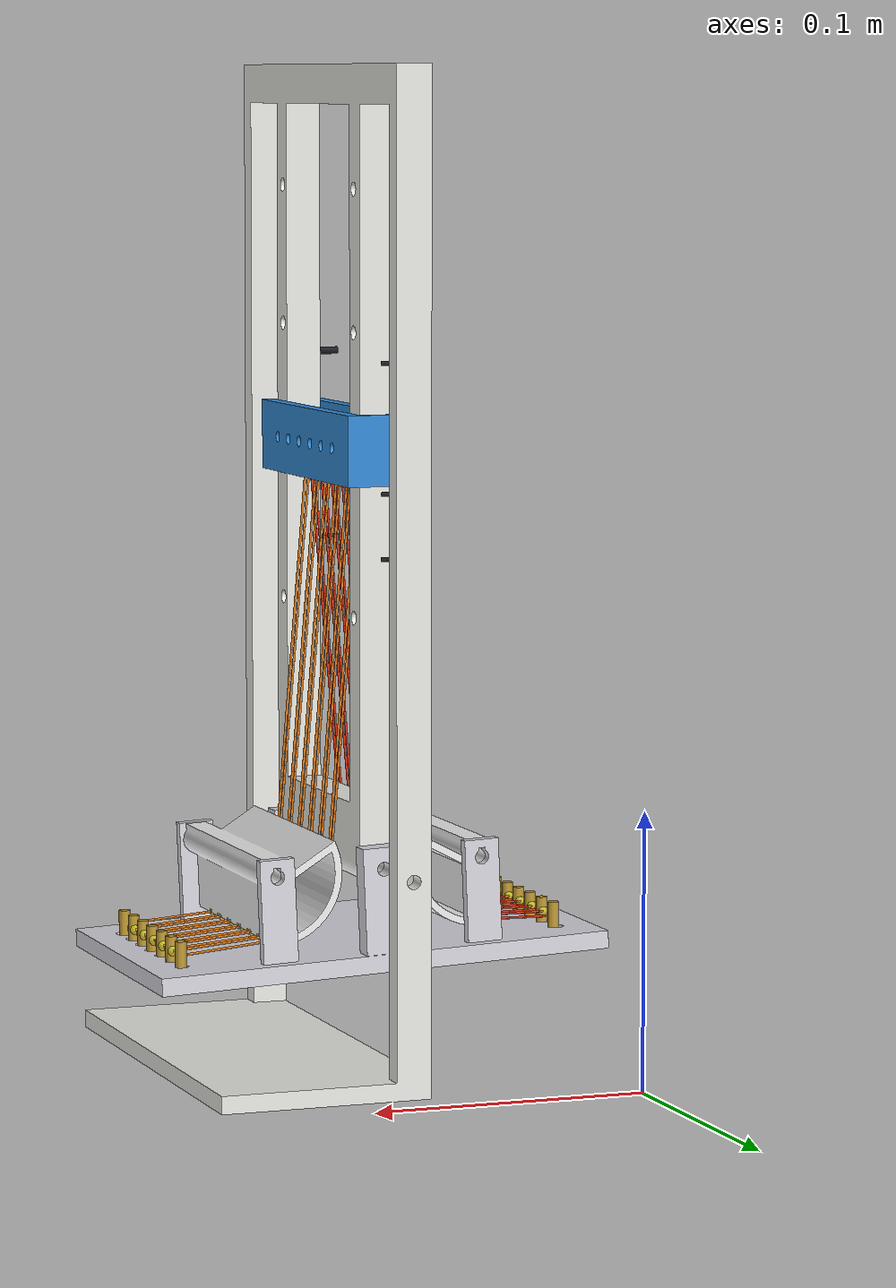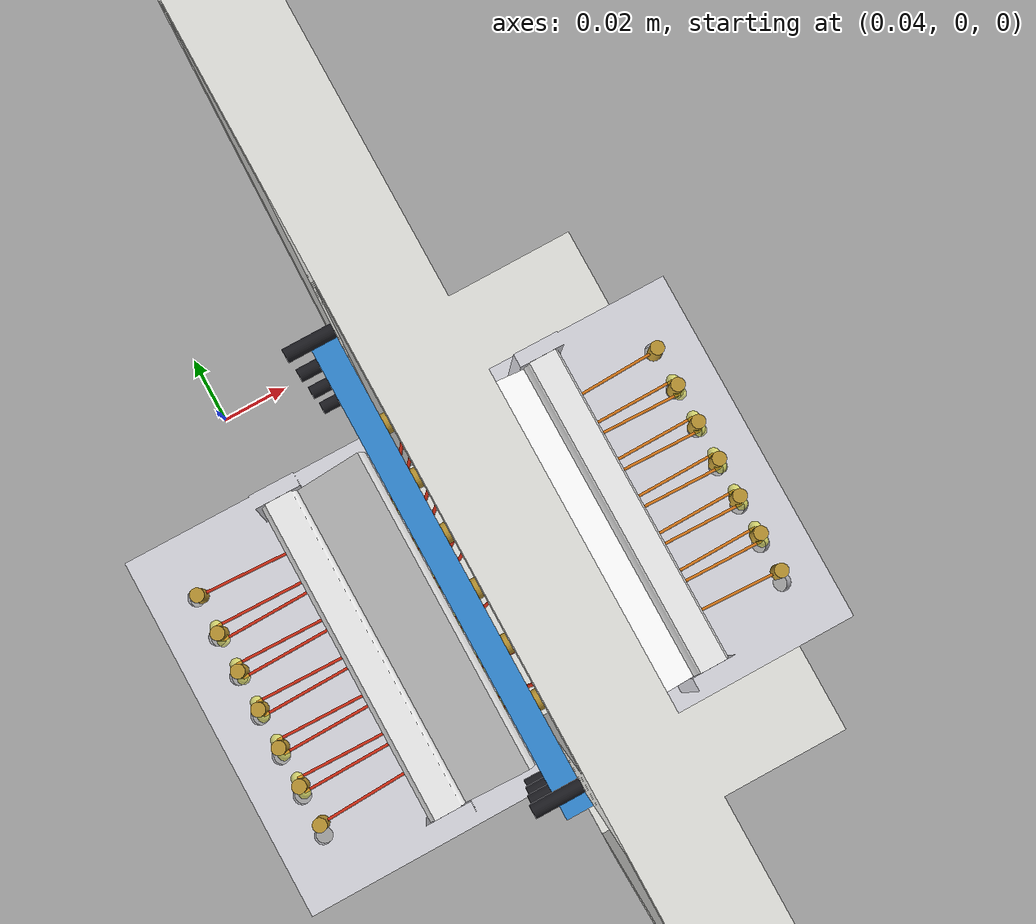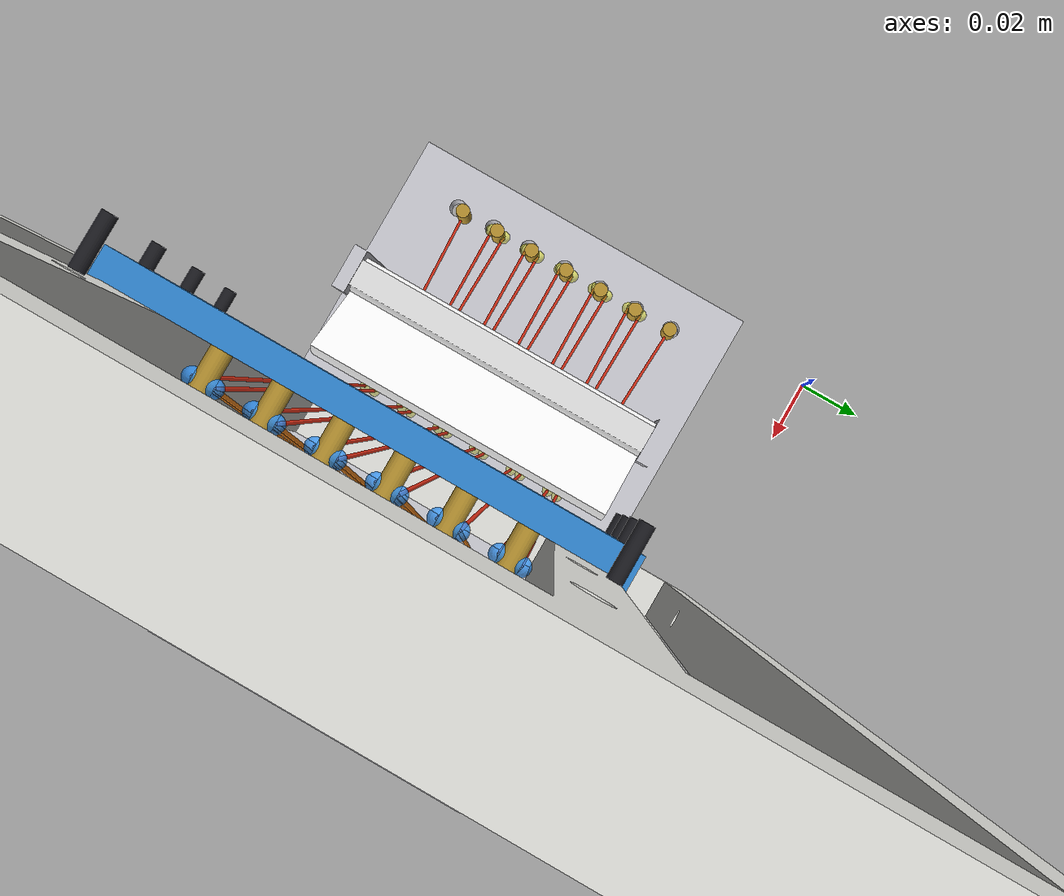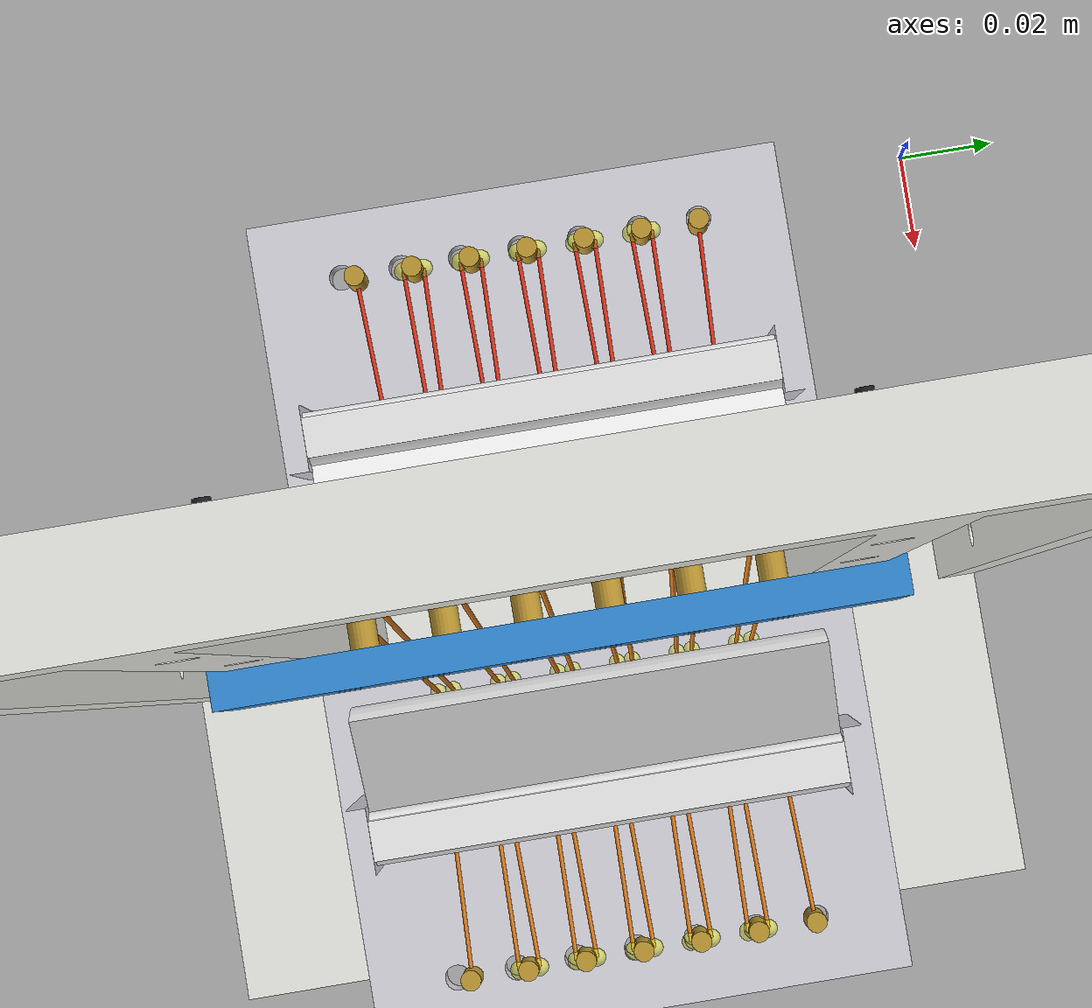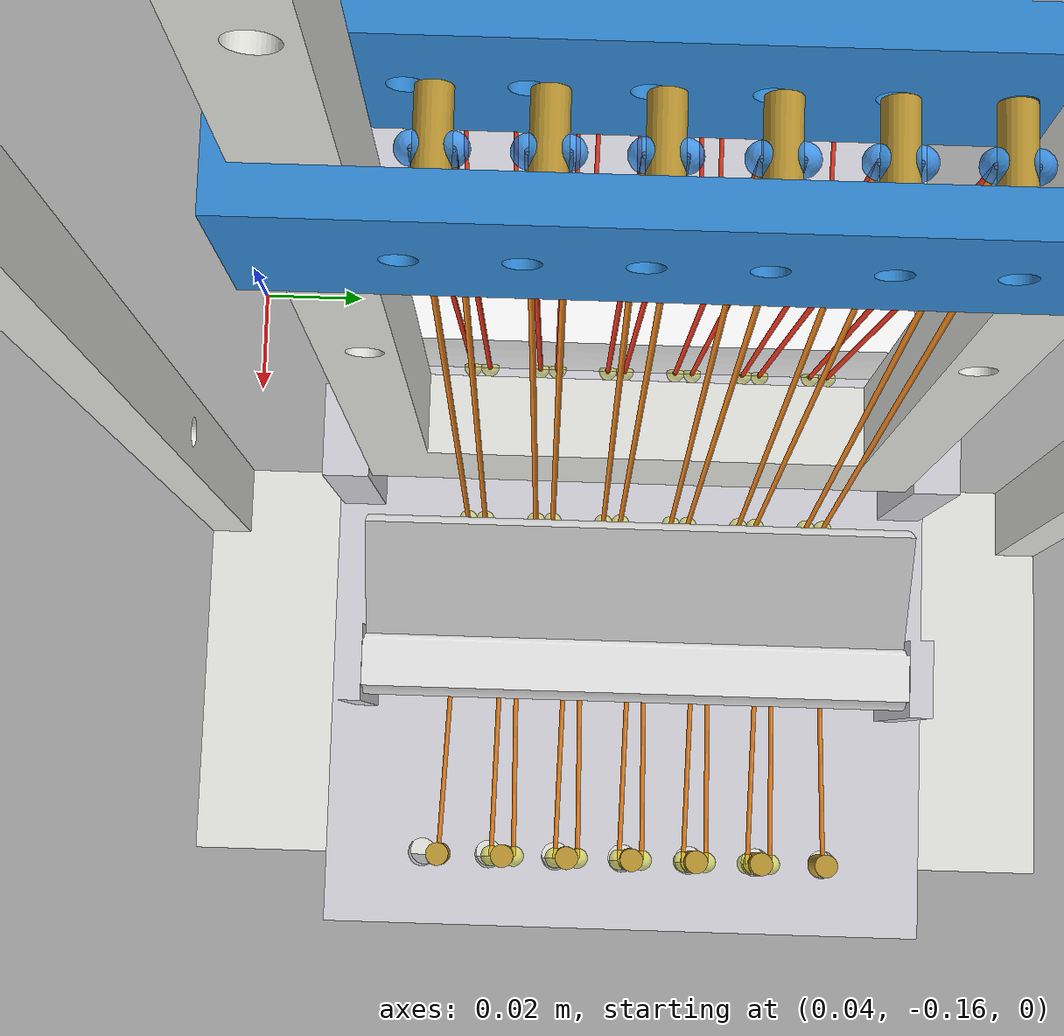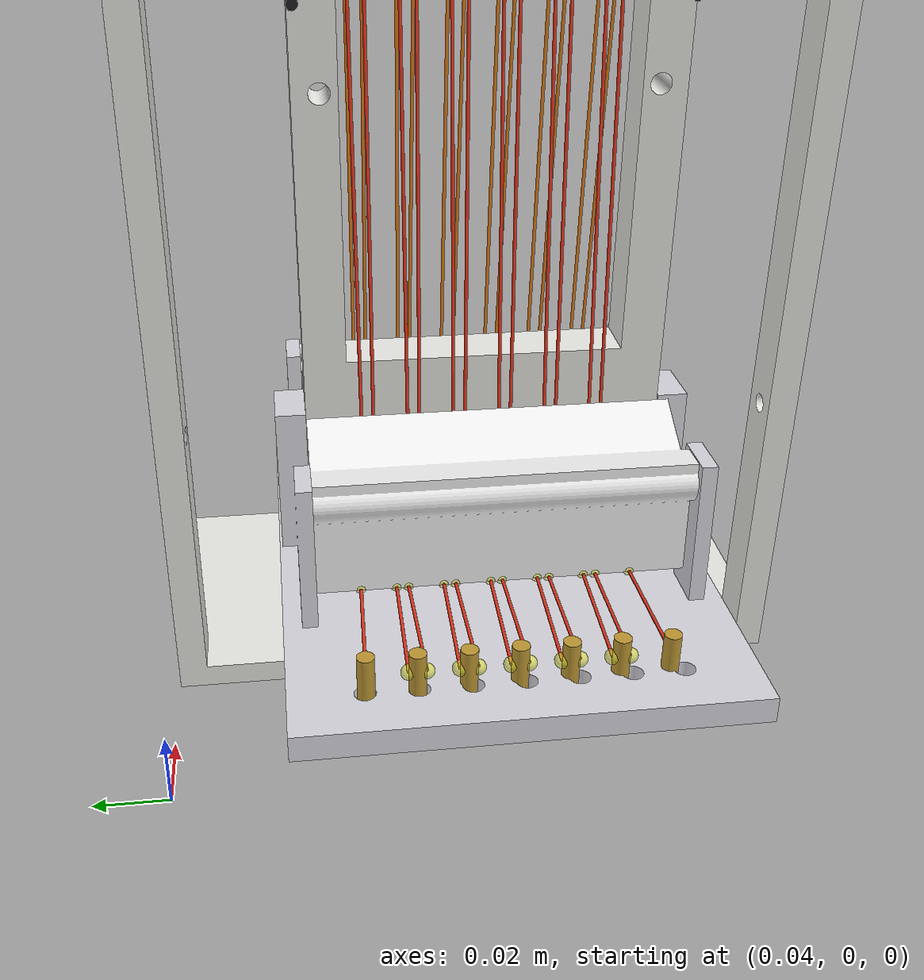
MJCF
<mujoco model="v2_wire_rig">
  <compiler meshdir="meshes" angle="radian" inertiafromgeom="true" autolimits="true"/>
  <option timestep="0.001" gravity="0 0 -9.81" integrator="RK4"/>
  <visual><global offwidth="1280" offheight="960"/></visual>

  <asset>
    <mesh name="inital_test_rod_3" file="inital_test_rod_3.stl"/>
    <mesh name="height_adjust_1" file="height_adjust_1.stl"/>
    <mesh name="inital_test_base_platev2_1" file="inital_test_base_platev2_1.stl"/>
    <mesh name="initial_test_dot2inpinv2_1" file="initial_test_dot2inpinv2_1.stl"/>
    <mesh name="keypinv2_1" file="keypinv2_1.stl"/>
    <mesh name="keypinv2_2" file="keypinv2_2.stl"/>
    <mesh name="radiusv2_1" file="radiusv2_1.stl"/>
    <mesh name="radiusv2_2" file="radiusv2_2.stl"/>
  </asset>

  <worldbody>
    <light pos="0.1 0.6 0.5" dir="-0.1 -0.7 -0.6" diffuse="0.9 0.9 0.9"/>
    <light pos="-0.2 0.4 -0.3" dir="0.3 -0.5 0.5" diffuse="0.4 0.4 0.4"/>

    <body name="frame">
      <geom type="mesh" mesh="inital_test_rod_3" rgba="0.92 0.92 0.90 1" density="1240" contype="0" conaffinity="0"/>
      <geom type="mesh" mesh="height_adjust_1" pos="0 0 0.00000" rgba="0.20 0.55 0.85 1" density="1240" contype="0" conaffinity="0"/>
    </body>
    <geom type="cylinder" fromto="0.07925 -0.05397 0.22606  0.09195 -0.05397 0.22606" size="0.00201" rgba="0.75 0.6 0.2 1" contype="0" conaffinity="0"/>
    <geom type="cylinder" fromto="0.07925 -0.06541 0.22606  0.09195 -0.06541 0.22606" size="0.00201" rgba="0.75 0.6 0.2 1" contype="0" conaffinity="0"/>
    <geom type="cylinder" fromto="0.07925 -0.07684 0.22606  0.09195 -0.07684 0.22606" size="0.00201" rgba="0.75 0.6 0.2 1" contype="0" conaffinity="0"/>
    <geom type="cylinder" fromto="0.07925 -0.08826 0.22606  0.09195 -0.08826 0.22606" size="0.00201" rgba="0.75 0.6 0.2 1" contype="0" conaffinity="0"/>
    <geom type="cylinder" fromto="0.07925 -0.09969 0.22606  0.09195 -0.09969 0.22606" size="0.00201" rgba="0.75 0.6 0.2 1" contype="0" conaffinity="0"/>
    <geom type="cylinder" fromto="0.07925 -0.11113 0.22606  0.09195 -0.11113 0.22606" size="0.00201" rgba="0.75 0.6 0.2 1" contype="0" conaffinity="0"/>
    <geom type="cylinder" fromto="0.0700 -0.04000 0.18796  0.0840 -0.04000 0.18796" size="0.00130" rgba="0.12 0.12 0.14 1" contype="0" conaffinity="0"/>
    <geom type="cylinder" fromto="0.0700 -0.12600 0.18796  0.0840 -0.12600 0.18796" size="0.00130" rgba="0.12 0.12 0.14 1" contype="0" conaffinity="0"/>
    <geom type="cylinder" fromto="0.0700 -0.04000 0.21082  0.0840 -0.04000 0.21082" size="0.00130" rgba="0.12 0.12 0.14 1" contype="0" conaffinity="0"/>
    <geom type="cylinder" fromto="0.0700 -0.12600 0.21082  0.0840 -0.12600 0.21082" size="0.00130" rgba="0.12 0.12 0.14 1" contype="0" conaffinity="0"/>
    <geom type="cylinder" fromto="0.0700 -0.04000 0.23368  0.0840 -0.04000 0.23368" size="0.00130" rgba="0.12 0.12 0.14 1" contype="0" conaffinity="0"/>
    <geom type="cylinder" fromto="0.0700 -0.12600 0.23368  0.0840 -0.12600 0.23368" size="0.00130" rgba="0.12 0.12 0.14 1" contype="0" conaffinity="0"/>
    <geom type="cylinder" fromto="0.0700 -0.04000 0.25654  0.0840 -0.04000 0.25654" size="0.00130" rgba="0.12 0.12 0.14 1" contype="0" conaffinity="0"/>
    <geom type="cylinder" fromto="0.0700 -0.12600 0.25654  0.0840 -0.12600 0.25654" size="0.00130" rgba="0.12 0.12 0.14 1" contype="0" conaffinity="0"/>
    <site name="toe_t1i" pos="0.08560 -0.05197 0.22606" size="0.0018" rgba="0.2 0.6 1 0.8"/>
    <site name="toe_t1o" pos="0.08560 -0.05598 0.22606" size="0.0018" rgba="0.2 0.6 1 0.8"/>
    <site name="toe_t3i" pos="0.08560 -0.06340 0.22606" size="0.0018" rgba="0.2 0.6 1 0.8"/>
    <site name="toe_t3o" pos="0.08560 -0.06741 0.22606" size="0.0018" rgba="0.2 0.6 1 0.8"/>
    <site name="toe_t5i" pos="0.08560 -0.07483 0.22606" size="0.0018" rgba="0.2 0.6 1 0.8"/>
    <site name="toe_t5o" pos="0.08560 -0.07884 0.22606" size="0.0018" rgba="0.2 0.6 1 0.8"/>
    <site name="toe_t7i" pos="0.08560 -0.08626 0.22606" size="0.0018" rgba="0.2 0.6 1 0.8"/>
    <site name="toe_t7o" pos="0.08560 -0.09027 0.22606" size="0.0018" rgba="0.2 0.6 1 0.8"/>
    <site name="toe_t9i" pos="0.08560 -0.09769 0.22606" size="0.0018" rgba="0.2 0.6 1 0.8"/>
    <site name="toe_t9o" pos="0.08560 -0.10170 0.22606" size="0.0018" rgba="0.2 0.6 1 0.8"/>
    <site name="toe_t11i" pos="0.08560 -0.10912 0.22606" size="0.0018" rgba="0.2 0.6 1 0.8"/>
    <site name="toe_t11o" pos="0.08560 -0.11313 0.22606" size="0.0018" rgba="0.2 0.6 1 0.8"/>
    <site name="heel_t1i" pos="0.08560 -0.05197 0.22606" size="0.0018" rgba="0.2 0.6 1 0.8"/>
    <site name="heel_t1o" pos="0.08560 -0.05598 0.22606" size="0.0018" rgba="0.2 0.6 1 0.8"/>
    <site name="heel_t3i" pos="0.08560 -0.06340 0.22606" size="0.0018" rgba="0.2 0.6 1 0.8"/>
    <site name="heel_t3o" pos="0.08560 -0.06741 0.22606" size="0.0018" rgba="0.2 0.6 1 0.8"/>
    <site name="heel_t5i" pos="0.08560 -0.07483 0.22606" size="0.0018" rgba="0.2 0.6 1 0.8"/>
    <site name="heel_t5o" pos="0.08560 -0.07884 0.22606" size="0.0018" rgba="0.2 0.6 1 0.8"/>
    <site name="heel_t7i" pos="0.08560 -0.08626 0.22606" size="0.0018" rgba="0.2 0.6 1 0.8"/>
    <site name="heel_t7o" pos="0.08560 -0.09027 0.22606" size="0.0018" rgba="0.2 0.6 1 0.8"/>
    <site name="heel_t9i" pos="0.08560 -0.09769 0.22606" size="0.0018" rgba="0.2 0.6 1 0.8"/>
    <site name="heel_t9o" pos="0.08560 -0.10170 0.22606" size="0.0018" rgba="0.2 0.6 1 0.8"/>
    <site name="heel_t11i" pos="0.08560 -0.10912 0.22606" size="0.0018" rgba="0.2 0.6 1 0.8"/>
    <site name="heel_t11o" pos="0.08560 -0.11313 0.22606" size="0.0018" rgba="0.2 0.6 1 0.8"/>

    <body name="foot" pos="0.08560 -0.08382 0.07976">
      <joint name="ankle" type="hinge" axis="0 -1 0" range="-0.8 0.8"
             damping="0.002"/>
      <geom type="mesh" mesh="inital_test_base_platev2_1" rgba="0.85 0.85 0.88 1" density="1240" contype="0" conaffinity="0"/>
      <geom type="mesh" mesh="initial_test_dot2inpinv2_1" rgba="0.20 0.20 0.20 1" density="1240" contype="0" conaffinity="0"/>
      <geom type="mesh" mesh="keypinv2_1" rgba="0.15 0.15 0.15 1" density="1240" contype="0" conaffinity="0"/>
      <geom type="mesh" mesh="keypinv2_2" rgba="0.15 0.15 0.15 1" density="1240" contype="0" conaffinity="0"/>
      <geom type="mesh" mesh="radiusv2_1" rgba="0.95 0.95 0.95 1" density="1240" contype="0" conaffinity="0"/>
      <geom type="mesh" mesh="radiusv2_2" rgba="0.95 0.95 0.95 1" density="1240" contype="0" conaffinity="0"/>
      <geom type="cylinder" fromto="-0.07036 0.03556 -0.03087  -0.07036 0.03556 -0.01817" size="0.00201" rgba="0.75 0.6 0.2 1" contype="0" conaffinity="0"/>
      <geom type="cylinder" fromto="-0.07036 0.02413 -0.03087  -0.07036 0.02413 -0.01817" size="0.00201" rgba="0.75 0.6 0.2 1" contype="0" conaffinity="0"/>
      <geom type="cylinder" fromto="-0.07036 0.01270 -0.03087  -0.07036 0.01270 -0.01817" size="0.00201" rgba="0.75 0.6 0.2 1" contype="0" conaffinity="0"/>
      <geom type="cylinder" fromto="-0.07036 0.00127 -0.03087  -0.07036 0.00127 -0.01817" size="0.00201" rgba="0.75 0.6 0.2 1" contype="0" conaffinity="0"/>
      <geom type="cylinder" fromto="-0.07036 -0.01016 -0.03087  -0.07036 -0.01016 -0.01817" size="0.00201" rgba="0.75 0.6 0.2 1" contype="0" conaffinity="0"/>
      <geom type="cylinder" fromto="-0.07036 -0.02159 -0.03087  -0.07036 -0.02159 -0.01817" size="0.00201" rgba="0.75 0.6 0.2 1" contype="0" conaffinity="0"/>
      <geom type="cylinder" fromto="-0.07036 -0.03302 -0.03087  -0.07036 -0.03302 -0.01817" size="0.00201" rgba="0.75 0.6 0.2 1" contype="0" conaffinity="0"/>
      <geom type="cylinder" fromto="0.06934 0.03556 -0.03683  0.06934 0.03556 -0.02413" size="0.00201" rgba="0.75 0.6 0.2 1" contype="0" conaffinity="0"/>
      <geom type="cylinder" fromto="0.06934 0.02413 -0.03683  0.06934 0.02413 -0.02413" size="0.00201" rgba="0.75 0.6 0.2 1" contype="0" conaffinity="0"/>
      <geom type="cylinder" fromto="0.06934 0.01270 -0.03683  0.06934 0.01270 -0.02413" size="0.00201" rgba="0.75 0.6 0.2 1" contype="0" conaffinity="0"/>
      <geom type="cylinder" fromto="0.06934 0.00127 -0.03683  0.06934 0.00127 -0.02413" size="0.00201" rgba="0.75 0.6 0.2 1" contype="0" conaffinity="0"/>
      <geom type="cylinder" fromto="0.06934 -0.01016 -0.03683  0.06934 -0.01016 -0.02413" size="0.00201" rgba="0.75 0.6 0.2 1" contype="0" conaffinity="0"/>
      <geom type="cylinder" fromto="0.06934 -0.02159 -0.03683  0.06934 -0.02159 -0.02413" size="0.00201" rgba="0.75 0.6 0.2 1" contype="0" conaffinity="0"/>
      <geom type="cylinder" fromto="0.06934 -0.03302 -0.03683  0.06934 -0.03302 -0.02413" size="0.00201" rgba="0.75 0.6 0.2 1" contype="0" conaffinity="0"/>
      <site name="toe_t0" pos="-0.07036 0.03556 -0.02325" size="0.0018" rgba="0.9 0.9 0.2 0.6"/>
      <site name="toe_t2i" pos="-0.07036 0.02614 -0.02325" size="0.0018" rgba="0.9 0.9 0.2 0.6"/>
      <site name="toe_t2o" pos="-0.07036 0.02212 -0.02325" size="0.0018" rgba="0.9 0.9 0.2 0.6"/>
      <site name="toe_t4i" pos="-0.07036 0.01471 -0.02325" size="0.0018" rgba="0.9 0.9 0.2 0.6"/>
      <site name="toe_t4o" pos="-0.07036 0.01069 -0.02325" size="0.0018" rgba="0.9 0.9 0.2 0.6"/>
      <site name="toe_t6i" pos="-0.07036 0.00328 -0.02325" size="0.0018" rgba="0.9 0.9 0.2 0.6"/>
      <site name="toe_t6o" pos="-0.07036 -0.00074 -0.02325" size="0.0018" rgba="0.9 0.9 0.2 0.6"/>
      <site name="toe_t8i" pos="-0.07036 -0.00815 -0.02325" size="0.0018" rgba="0.9 0.9 0.2 0.6"/>
      <site name="toe_t8o" pos="-0.07036 -0.01217 -0.02325" size="0.0018" rgba="0.9 0.9 0.2 0.6"/>
      <site name="toe_t10i" pos="-0.07036 -0.01958 -0.02325" size="0.0018" rgba="0.9 0.9 0.2 0.6"/>
      <site name="toe_t10o" pos="-0.07036 -0.02360 -0.02325" size="0.0018" rgba="0.9 0.9 0.2 0.6"/>
      <site name="toe_t12" pos="-0.07036 -0.03302 -0.02325" size="0.0018" rgba="0.9 0.9 0.2 0.6"/>
      <site name="toe_s0a0" pos="-0.03809 0.03413 -0.02324" size="0.0015" rgba="0.9 0.9 0.2 0.5"/>
      <site name="toe_s0a1" pos="-0.02094 0.03270 -0.01656" size="0.0015" rgba="0.9 0.9 0.2 0.5"/>
      <site name="toe_s0a2" pos="-0.01280 0.03127 -0.00005" size="0.0015" rgba="0.9 0.9 0.2 0.5"/>
      <site name="toe_s1a0" pos="-0.01280 0.02842 -0.00005" size="0.0015" rgba="0.9 0.9 0.2 0.5"/>
      <site name="toe_s1a1" pos="-0.02094 0.02699 -0.01656" size="0.0015" rgba="0.9 0.9 0.2 0.5"/>
      <site name="toe_s1a2" pos="-0.03809 0.02556 -0.02324" size="0.0015" rgba="0.9 0.9 0.2 0.5"/>
      <site name="toe_s2a0" pos="-0.03809 0.02270 -0.02324" size="0.0015" rgba="0.9 0.9 0.2 0.5"/>
      <site name="toe_s2a1" pos="-0.02094 0.02127 -0.01656" size="0.0015" rgba="0.9 0.9 0.2 0.5"/>
      <site name="toe_s2a2" pos="-0.01280 0.01984 -0.00005" size="0.0015" rgba="0.9 0.9 0.2 0.5"/>
      <site name="toe_s3a0" pos="-0.01280 0.01699 -0.00005" size="0.0015" rgba="0.9 0.9 0.2 0.5"/>
      <site name="toe_s3a1" pos="-0.02094 0.01556 -0.01656" size="0.0015" rgba="0.9 0.9 0.2 0.5"/>
      <site name="toe_s3a2" pos="-0.03809 0.01413 -0.02324" size="0.0015" rgba="0.9 0.9 0.2 0.5"/>
      <site name="toe_s4a0" pos="-0.03809 0.01127 -0.02324" size="0.0015" rgba="0.9 0.9 0.2 0.5"/>
      <site name="toe_s4a1" pos="-0.02094 0.00984 -0.01656" size="0.0015" rgba="0.9 0.9 0.2 0.5"/>
      <site name="toe_s4a2" pos="-0.01280 0.00841 -0.00005" size="0.0015" rgba="0.9 0.9 0.2 0.5"/>
      <site name="toe_s5a0" pos="-0.01280 0.00556 -0.00005" size="0.0015" rgba="0.9 0.9 0.2 0.5"/>
      <site name="toe_s5a1" pos="-0.02094 0.00413 -0.01656" size="0.0015" rgba="0.9 0.9 0.2 0.5"/>
      <site name="toe_s5a2" pos="-0.03809 0.00270 -0.02324" size="0.0015" rgba="0.9 0.9 0.2 0.5"/>
      <site name="toe_s6a0" pos="-0.03809 -0.00016 -0.02324" size="0.0015" rgba="0.9 0.9 0.2 0.5"/>
      <site name="toe_s6a1" pos="-0.02094 -0.00159 -0.01656" size="0.0015" rgba="0.9 0.9 0.2 0.5"/>
      <site name="toe_s6a2" pos="-0.01280 -0.00302 -0.00005" size="0.0015" rgba="0.9 0.9 0.2 0.5"/>
      <site name="toe_s7a0" pos="-0.01280 -0.00587 -0.00005" size="0.0015" rgba="0.9 0.9 0.2 0.5"/>
      <site name="toe_s7a1" pos="-0.02094 -0.00730 -0.01656" size="0.0015" rgba="0.9 0.9 0.2 0.5"/>
      <site name="toe_s7a2" pos="-0.03809 -0.00873 -0.02324" size="0.0015" rgba="0.9 0.9 0.2 0.5"/>
      <site name="toe_s8a0" pos="-0.03809 -0.01159 -0.02324" size="0.0015" rgba="0.9 0.9 0.2 0.5"/>
      <site name="toe_s8a1" pos="-0.02094 -0.01302 -0.01656" size="0.0015" rgba="0.9 0.9 0.2 0.5"/>
      <site name="toe_s8a2" pos="-0.01280 -0.01445 -0.00005" size="0.0015" rgba="0.9 0.9 0.2 0.5"/>
      <site name="toe_s9a0" pos="-0.01280 -0.01730 -0.00005" size="0.0015" rgba="0.9 0.9 0.2 0.5"/>
      <site name="toe_s9a1" pos="-0.02094 -0.01873 -0.01656" size="0.0015" rgba="0.9 0.9 0.2 0.5"/>
      <site name="toe_s9a2" pos="-0.03809 -0.02016 -0.02324" size="0.0015" rgba="0.9 0.9 0.2 0.5"/>
      <site name="toe_s10a0" pos="-0.03809 -0.02302 -0.02324" size="0.0015" rgba="0.9 0.9 0.2 0.5"/>
      <site name="toe_s10a1" pos="-0.02094 -0.02445 -0.01656" size="0.0015" rgba="0.9 0.9 0.2 0.5"/>
      <site name="toe_s10a2" pos="-0.01280 -0.02588 -0.00005" size="0.0015" rgba="0.9 0.9 0.2 0.5"/>
      <site name="toe_s11a0" pos="-0.01280 -0.02873 -0.00005" size="0.0015" rgba="0.9 0.9 0.2 0.5"/>
      <site name="toe_s11a1" pos="-0.02094 -0.03016 -0.01656" size="0.0015" rgba="0.9 0.9 0.2 0.5"/>
      <site name="toe_s11a2" pos="-0.03809 -0.03159 -0.02324" size="0.0015" rgba="0.9 0.9 0.2 0.5"/>
      <site name="heel_t0" pos="0.06934 0.03556 -0.02921" size="0.0018" rgba="0.9 0.9 0.2 0.6"/>
      <site name="heel_t2i" pos="0.06934 0.02614 -0.02921" size="0.0018" rgba="0.9 0.9 0.2 0.6"/>
      <site name="heel_t2o" pos="0.06934 0.02212 -0.02921" size="0.0018" rgba="0.9 0.9 0.2 0.6"/>
      <site name="heel_t4i" pos="0.06934 0.01471 -0.02921" size="0.0018" rgba="0.9 0.9 0.2 0.6"/>
      <site name="heel_t4o" pos="0.06934 0.01069 -0.02921" size="0.0018" rgba="0.9 0.9 0.2 0.6"/>
      <site name="heel_t6i" pos="0.06934 0.00328 -0.02921" size="0.0018" rgba="0.9 0.9 0.2 0.6"/>
      <site name="heel_t6o" pos="0.06934 -0.00074 -0.02921" size="0.0018" rgba="0.9 0.9 0.2 0.6"/>
      <site name="heel_t8i" pos="0.06934 -0.00815 -0.02921" size="0.0018" rgba="0.9 0.9 0.2 0.6"/>
      <site name="heel_t8o" pos="0.06934 -0.01217 -0.02921" size="0.0018" rgba="0.9 0.9 0.2 0.6"/>
      <site name="heel_t10i" pos="0.06934 -0.01958 -0.02921" size="0.0018" rgba="0.9 0.9 0.2 0.6"/>
      <site name="heel_t10o" pos="0.06934 -0.02360 -0.02921" size="0.0018" rgba="0.9 0.9 0.2 0.6"/>
      <site name="heel_t12" pos="0.06934 -0.03302 -0.02921" size="0.0018" rgba="0.9 0.9 0.2 0.6"/>
      <site name="heel_s0a0" pos="0.03591 0.03413 -0.02632" size="0.0015" rgba="0.9 0.9 0.2 0.5"/>
      <site name="heel_s0a1" pos="0.02013 0.03270 -0.01897" size="0.0015" rgba="0.9 0.9 0.2 0.5"/>
      <site name="heel_s0a2" pos="0.01279 0.03127 -0.00318" size="0.0015" rgba="0.9 0.9 0.2 0.5"/>
      <site name="heel_s1a0" pos="0.01279 0.02842 -0.00318" size="0.0015" rgba="0.9 0.9 0.2 0.5"/>
      <site name="heel_s1a1" pos="0.02013 0.02699 -0.01897" size="0.0015" rgba="0.9 0.9 0.2 0.5"/>
      <site name="heel_s1a2" pos="0.03591 0.02556 -0.02632" size="0.0015" rgba="0.9 0.9 0.2 0.5"/>
      <site name="heel_s2a0" pos="0.03591 0.02270 -0.02632" size="0.0015" rgba="0.9 0.9 0.2 0.5"/>
      <site name="heel_s2a1" pos="0.02013 0.02127 -0.01897" size="0.0015" rgba="0.9 0.9 0.2 0.5"/>
      <site name="heel_s2a2" pos="0.01279 0.01984 -0.00318" size="0.0015" rgba="0.9 0.9 0.2 0.5"/>
      <site name="heel_s3a0" pos="0.01279 0.01699 -0.00318" size="0.0015" rgba="0.9 0.9 0.2 0.5"/>
      <site name="heel_s3a1" pos="0.02013 0.01556 -0.01897" size="0.0015" rgba="0.9 0.9 0.2 0.5"/>
      <site name="heel_s3a2" pos="0.03591 0.01413 -0.02632" size="0.0015" rgba="0.9 0.9 0.2 0.5"/>
      <site name="heel_s4a0" pos="0.03591 0.01127 -0.02632" size="0.0015" rgba="0.9 0.9 0.2 0.5"/>
      <site name="heel_s4a1" pos="0.02013 0.00984 -0.01897" size="0.0015" rgba="0.9 0.9 0.2 0.5"/>
      <site name="heel_s4a2" pos="0.01279 0.00841 -0.00318" size="0.0015" rgba="0.9 0.9 0.2 0.5"/>
      <site name="heel_s5a0" pos="0.01279 0.00556 -0.00318" size="0.0015" rgba="0.9 0.9 0.2 0.5"/>
      <site name="heel_s5a1" pos="0.02013 0.00413 -0.01897" size="0.0015" rgba="0.9 0.9 0.2 0.5"/>
      <site name="heel_s5a2" pos="0.03591 0.00270 -0.02632" size="0.0015" rgba="0.9 0.9 0.2 0.5"/>
      <site name="heel_s6a0" pos="0.03591 -0.00016 -0.02632" size="0.0015" rgba="0.9 0.9 0.2 0.5"/>
      <site name="heel_s6a1" pos="0.02013 -0.00159 -0.01897" size="0.0015" rgba="0.9 0.9 0.2 0.5"/>
      <site name="heel_s6a2" pos="0.01279 -0.00302 -0.00318" size="0.0015" rgba="0.9 0.9 0.2 0.5"/>
      <site name="heel_s7a0" pos="0.01279 -0.00587 -0.00318" size="0.0015" rgba="0.9 0.9 0.2 0.5"/>
      <site name="heel_s7a1" pos="0.02013 -0.00730 -0.01897" size="0.0015" rgba="0.9 0.9 0.2 0.5"/>
      <site name="heel_s7a2" pos="0.03591 -0.00873 -0.02632" size="0.0015" rgba="0.9 0.9 0.2 0.5"/>
      <site name="heel_s8a0" pos="0.03591 -0.01159 -0.02632" size="0.0015" rgba="0.9 0.9 0.2 0.5"/>
      <site name="heel_s8a1" pos="0.02013 -0.01302 -0.01897" size="0.0015" rgba="0.9 0.9 0.2 0.5"/>
      <site name="heel_s8a2" pos="0.01279 -0.01445 -0.00318" size="0.0015" rgba="0.9 0.9 0.2 0.5"/>
      <site name="heel_s9a0" pos="0.01279 -0.01730 -0.00318" size="0.0015" rgba="0.9 0.9 0.2 0.5"/>
      <site name="heel_s9a1" pos="0.02013 -0.01873 -0.01897" size="0.0015" rgba="0.9 0.9 0.2 0.5"/>
      <site name="heel_s9a2" pos="0.03591 -0.02016 -0.02632" size="0.0015" rgba="0.9 0.9 0.2 0.5"/>
      <site name="heel_s10a0" pos="0.03591 -0.02302 -0.02632" size="0.0015" rgba="0.9 0.9 0.2 0.5"/>
      <site name="heel_s10a1" pos="0.02013 -0.02445 -0.01897" size="0.0015" rgba="0.9 0.9 0.2 0.5"/>
      <site name="heel_s10a2" pos="0.01279 -0.02588 -0.00318" size="0.0015" rgba="0.9 0.9 0.2 0.5"/>
      <site name="heel_s11a0" pos="0.01279 -0.02873 -0.00318" size="0.0015" rgba="0.9 0.9 0.2 0.5"/>
      <site name="heel_s11a1" pos="0.02013 -0.03016 -0.01897" size="0.0015" rgba="0.9 0.9 0.2 0.5"/>
      <site name="heel_s11a2" pos="0.03591 -0.03159 -0.02632" size="0.0015" rgba="0.9 0.9 0.2 0.5"/>
    </body>
  </worldbody>

  <tendon>
    <!-- physically one continuous wire per side; modeled as 12
         independent strands (bolt-wrap capstan friction blocks slip).
         MOSFET k heats its post-pair strand(s) -> per-strand actuation. -->
    <spatial name="w_toe_s0" rgba="0.9 0.2 0.1 0.9" width="0.0004">
      <site site="toe_t0"/>
      <site site="toe_s0a0"/>
      <site site="toe_s0a1"/>
      <site site="toe_s0a2"/>
      <site site="toe_t1i"/>
    </spatial>
    <spatial name="w_toe_s1" rgba="0.9 0.2 0.1 0.9" width="0.0004">
      <site site="toe_t1o"/>
      <site site="toe_s1a0"/>
      <site site="toe_s1a1"/>
      <site site="toe_s1a2"/>
      <site site="toe_t2i"/>
    </spatial>
    <spatial name="w_toe_s2" rgba="0.9 0.2 0.1 0.9" width="0.0004">
      <site site="toe_t2o"/>
      <site site="toe_s2a0"/>
      <site site="toe_s2a1"/>
      <site site="toe_s2a2"/>
      <site site="toe_t3i"/>
    </spatial>
    <spatial name="w_toe_s3" rgba="0.9 0.2 0.1 0.9" width="0.0004">
      <site site="toe_t3o"/>
      <site site="toe_s3a0"/>
      <site site="toe_s3a1"/>
      <site site="toe_s3a2"/>
      <site site="toe_t4i"/>
    </spatial>
    <spatial name="w_toe_s4" rgba="0.9 0.2 0.1 0.9" width="0.0004">
      <site site="toe_t4o"/>
      <site site="toe_s4a0"/>
      <site site="toe_s4a1"/>
      <site site="toe_s4a2"/>
      <site site="toe_t5i"/>
    </spatial>
    <spatial name="w_toe_s5" rgba="0.9 0.2 0.1 0.9" width="0.0004">
      <site site="toe_t5o"/>
      <site site="toe_s5a0"/>
      <site site="toe_s5a1"/>
      <site site="toe_s5a2"/>
      <site site="toe_t6i"/>
    </spatial>
    <spatial name="w_toe_s6" rgba="0.9 0.2 0.1 0.9" width="0.0004">
      <site site="toe_t6o"/>
      <site site="toe_s6a0"/>
      <site site="toe_s6a1"/>
      <site site="toe_s6a2"/>
      <site site="toe_t7i"/>
    </spatial>
    <spatial name="w_toe_s7" rgba="0.9 0.2 0.1 0.9" width="0.0004">
      <site site="toe_t7o"/>
      <site site="toe_s7a0"/>
      <site site="toe_s7a1"/>
      <site site="toe_s7a2"/>
      <site site="toe_t8i"/>
    </spatial>
    <spatial name="w_toe_s8" rgba="0.9 0.2 0.1 0.9" width="0.0004">
      <site site="toe_t8o"/>
      <site site="toe_s8a0"/>
      <site site="toe_s8a1"/>
      <site site="toe_s8a2"/>
      <site site="toe_t9i"/>
    </spatial>
    <spatial name="w_toe_s9" rgba="0.9 0.2 0.1 0.9" width="0.0004">
      <site site="toe_t9o"/>
      <site site="toe_s9a0"/>
      <site site="toe_s9a1"/>
      <site site="toe_s9a2"/>
      <site site="toe_t10i"/>
    </spatial>
    <spatial name="w_toe_s10" rgba="0.9 0.2 0.1 0.9" width="0.0004">
      <site site="toe_t10o"/>
      <site site="toe_s10a0"/>
      <site site="toe_s10a1"/>
      <site site="toe_s10a2"/>
      <site site="toe_t11i"/>
    </spatial>
    <spatial name="w_toe_s11" rgba="0.9 0.2 0.1 0.9" width="0.0004">
      <site site="toe_t11o"/>
      <site site="toe_s11a0"/>
      <site site="toe_s11a1"/>
      <site site="toe_s11a2"/>
      <site site="toe_t12"/>
    </spatial>
    <spatial name="w_heel_s0" rgba="0.9 0.5 0.1 0.9" width="0.0004">
      <site site="heel_t0"/>
      <site site="heel_s0a0"/>
      <site site="heel_s0a1"/>
      <site site="heel_s0a2"/>
      <site site="heel_t1i"/>
    </spatial>
    <spatial name="w_heel_s1" rgba="0.9 0.5 0.1 0.9" width="0.0004">
      <site site="heel_t1o"/>
      <site site="heel_s1a0"/>
      <site site="heel_s1a1"/>
      <site site="heel_s1a2"/>
      <site site="heel_t2i"/>
    </spatial>
    <spatial name="w_heel_s2" rgba="0.9 0.5 0.1 0.9" width="0.0004">
      <site site="heel_t2o"/>
      <site site="heel_s2a0"/>
      <site site="heel_s2a1"/>
      <site site="heel_s2a2"/>
      <site site="heel_t3i"/>
    </spatial>
    <spatial name="w_heel_s3" rgba="0.9 0.5 0.1 0.9" width="0.0004">
      <site site="heel_t3o"/>
      <site site="heel_s3a0"/>
      <site site="heel_s3a1"/>
      <site site="heel_s3a2"/>
      <site site="heel_t4i"/>
    </spatial>
    <spatial name="w_heel_s4" rgba="0.9 0.5 0.1 0.9" width="0.0004">
      <site site="heel_t4o"/>
      <site site="heel_s4a0"/>
      <site site="heel_s4a1"/>
      <site site="heel_s4a2"/>
      <site site="heel_t5i"/>
    </spatial>
    <spatial name="w_heel_s5" rgba="0.9 0.5 0.1 0.9" width="0.0004">
      <site site="heel_t5o"/>
      <site site="heel_s5a0"/>
      <site site="heel_s5a1"/>
      <site site="heel_s5a2"/>
      <site site="heel_t6i"/>
    </spatial>
    <spatial name="w_heel_s6" rgba="0.9 0.5 0.1 0.9" width="0.0004">
      <site site="heel_t6o"/>
      <site site="heel_s6a0"/>
      <site site="heel_s6a1"/>
      <site site="heel_s6a2"/>
      <site site="heel_t7i"/>
    </spatial>
    <spatial name="w_heel_s7" rgba="0.9 0.5 0.1 0.9" width="0.0004">
      <site site="heel_t7o"/>
      <site site="heel_s7a0"/>
      <site site="heel_s7a1"/>
      <site site="heel_s7a2"/>
      <site site="heel_t8i"/>
    </spatial>
    <spatial name="w_heel_s8" rgba="0.9 0.5 0.1 0.9" width="0.0004">
      <site site="heel_t8o"/>
      <site site="heel_s8a0"/>
      <site site="heel_s8a1"/>
      <site site="heel_s8a2"/>
      <site site="heel_t9i"/>
    </spatial>
    <spatial name="w_heel_s9" rgba="0.9 0.5 0.1 0.9" width="0.0004">
      <site site="heel_t9o"/>
      <site site="heel_s9a0"/>
      <site site="heel_s9a1"/>
      <site site="heel_s9a2"/>
      <site site="heel_t10i"/>
    </spatial>
    <spatial name="w_heel_s10" rgba="0.9 0.5 0.1 0.9" width="0.0004">
      <site site="heel_t10o"/>
      <site site="heel_s10a0"/>
      <site site="heel_s10a1"/>
      <site site="heel_s10a2"/>
      <site site="heel_t11i"/>
    </spatial>
    <spatial name="w_heel_s11" rgba="0.9 0.5 0.1 0.9" width="0.0004">
      <site site="heel_t11o"/>
      <site site="heel_s11a0"/>
      <site site="heel_s11a1"/>
      <site site="heel_s11a2"/>
      <site site="heel_t12"/>
    </spatial>
  </tendon>

  <actuator>
    <!-- ctrl = strand tension [N] (later: driven by sma_physics) -->
    <motor name="a_toe_s0" tendon="w_toe_s0" gear="1" ctrlrange="0 10"/>
    <motor name="a_toe_s1" tendon="w_toe_s1" gear="1" ctrlrange="0 10"/>
    <motor name="a_toe_s2" tendon="w_toe_s2" gear="1" ctrlrange="0 10"/>
    <motor name="a_toe_s3" tendon="w_toe_s3" gear="1" ctrlrange="0 10"/>
    <motor name="a_toe_s4" tendon="w_toe_s4" gear="1" ctrlrange="0 10"/>
    <motor name="a_toe_s5" tendon="w_toe_s5" gear="1" ctrlrange="0 10"/>
    <motor name="a_toe_s6" tendon="w_toe_s6" gear="1" ctrlrange="0 10"/>
    <motor name="a_toe_s7" tendon="w_toe_s7" gear="1" ctrlrange="0 10"/>
    <motor name="a_toe_s8" tendon="w_toe_s8" gear="1" ctrlrange="0 10"/>
    <motor name="a_toe_s9" tendon="w_toe_s9" gear="1" ctrlrange="0 10"/>
    <motor name="a_toe_s10" tendon="w_toe_s10" gear="1" ctrlrange="0 10"/>
    <motor name="a_toe_s11" tendon="w_toe_s11" gear="1" ctrlrange="0 10"/>
    <motor name="a_heel_s0" tendon="w_heel_s0" gear="1" ctrlrange="0 10"/>
    <motor name="a_heel_s1" tendon="w_heel_s1" gear="1" ctrlrange="0 10"/>
    <motor name="a_heel_s2" tendon="w_heel_s2" gear="1" ctrlrange="0 10"/>
    <motor name="a_heel_s3" tendon="w_heel_s3" gear="1" ctrlrange="0 10"/>
    <motor name="a_heel_s4" tendon="w_heel_s4" gear="1" ctrlrange="0 10"/>
    <motor name="a_heel_s5" tendon="w_heel_s5" gear="1" ctrlrange="0 10"/>
    <motor name="a_heel_s6" tendon="w_heel_s6" gear="1" ctrlrange="0 10"/>
    <motor name="a_heel_s7" tendon="w_heel_s7" gear="1" ctrlrange="0 10"/>
    <motor name="a_heel_s8" tendon="w_heel_s8" gear="1" ctrlrange="0 10"/>
    <motor name="a_heel_s9" tendon="w_heel_s9" gear="1" ctrlrange="0 10"/>
    <motor name="a_heel_s10" tendon="w_heel_s10" gear="1" ctrlrange="0 10"/>
    <motor name="a_heel_s11" tendon="w_heel_s11" gear="1" ctrlrange="0 10"/>
  </actuator>

  <sensor>
    <jointpos name="s_ankle" joint="ankle"/>
    <tendonpos name="len_toe_s0" tendon="w_toe_s0"/>
    <tendonpos name="len_toe_s1" tendon="w_toe_s1"/>
    <tendonpos name="len_toe_s2" tendon="w_toe_s2"/>
    <tendonpos name="len_toe_s3" tendon="w_toe_s3"/>
    <tendonpos name="len_toe_s4" tendon="w_toe_s4"/>
    <tendonpos name="len_toe_s5" tendon="w_toe_s5"/>
    <tendonpos name="len_toe_s6" tendon="w_toe_s6"/>
    <tendonpos name="len_toe_s7" tendon="w_toe_s7"/>
    <tendonpos name="len_toe_s8" tendon="w_toe_s8"/>
    <tendonpos name="len_toe_s9" tendon="w_toe_s9"/>
    <tendonpos name="len_toe_s10" tendon="w_toe_s10"/>
    <tendonpos name="len_toe_s11" tendon="w_toe_s11"/>
    <tendonpos name="len_heel_s0" tendon="w_heel_s0"/>
    <tendonpos name="len_heel_s1" tendon="w_heel_s1"/>
    <tendonpos name="len_heel_s2" tendon="w_heel_s2"/>
    <tendonpos name="len_heel_s3" tendon="w_heel_s3"/>
    <tendonpos name="len_heel_s4" tendon="w_heel_s4"/>
    <tendonpos name="len_heel_s5" tendon="w_heel_s5"/>
    <tendonpos name="len_heel_s6" tendon="w_heel_s6"/>
    <tendonpos name="len_heel_s7" tendon="w_heel_s7"/>
    <tendonpos name="len_heel_s8" tendon="w_heel_s8"/>
    <tendonpos name="len_heel_s9" tendon="w_heel_s9"/>
    <tendonpos name="len_heel_s10" tendon="w_heel_s10"/>
    <tendonpos name="len_heel_s11" tendon="w_heel_s11"/>
  </sensor>
</mujoco>
